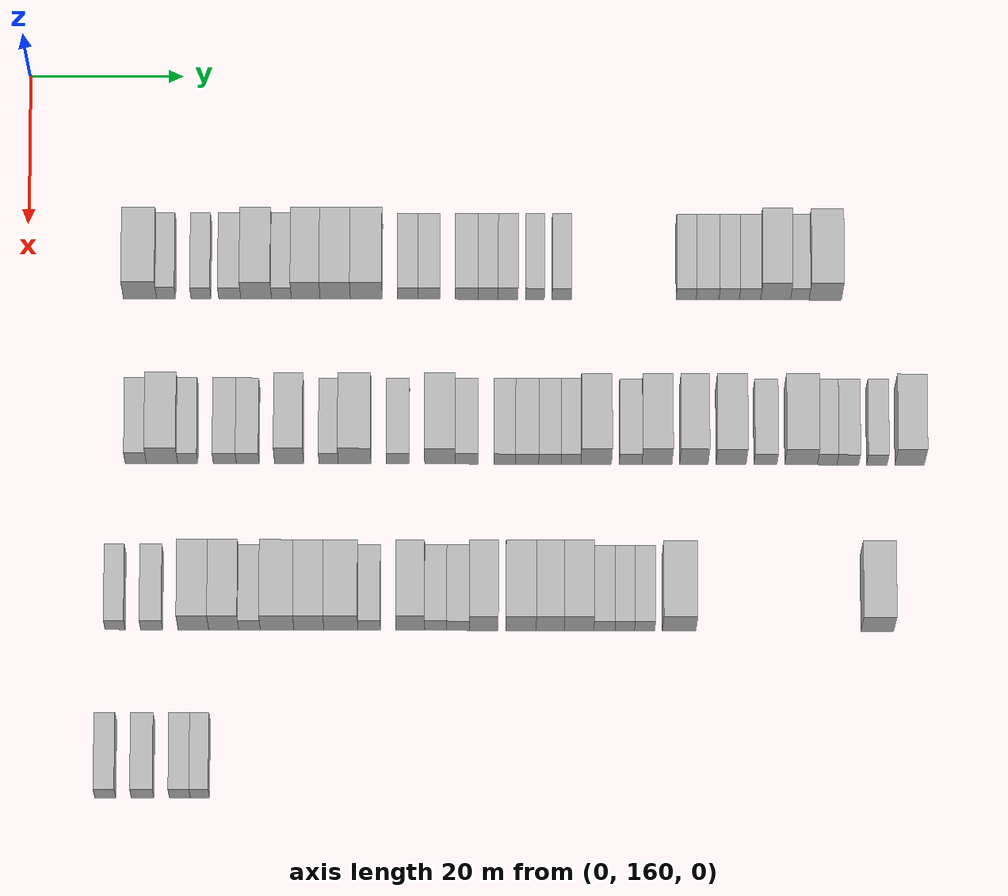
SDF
<sdf version="1.6">
 <world name="default">
  <model name="building_136">
   <static>1</static>
   <pose>25.0000 174.6385 0 0.000000 0.000000 0.000000</pose>
   <link name="link">
    <pose>0 0 4.50 0 0 0</pose>
    <collision name="collision"><geometry><box><size>10.0000 4.3280 9.0000</size></box></geometry></collision>
    <visual name="visual">
     <cast_shadows>0</cast_shadows>
     <geometry><box><size>10.0000 4.3280 9.0000</size></box></geometry>
     <material>
      <script>
       <uri>model://HANNAS_wall/materials/scripts</uri>
       <uri>model://HANNAS_wall/materials/textures</uri>
       <name>vrc/HANNAS_wall</name>
      </script>
     </material>
    </visual>
   </link>
  </model>
  <model name="building_137">
   <static>1</static>
   <pose>25.0000 178.0387 0 0.000000 0.000000 0.000000</pose>
   <link name="link">
    <pose>0 0 3.00 0 0 0</pose>
    <collision name="collision"><geometry><box><size>10.0000 2.4725 6.0000</size></box></geometry></collision>
    <visual name="visual">
     <cast_shadows>0</cast_shadows>
     <geometry><box><size>10.0000 2.4725 6.0000</size></box></geometry>
     <material>
      <script>
       <uri>model://HANNAS_wall/materials/scripts</uri>
       <uri>model://HANNAS_wall/materials/textures</uri>
       <name>vrc/HANNAS_wall</name>
      </script>
     </material>
    </visual>
   </link>
  </model>
  <model name="building_138">
   <static>1</static>
   <pose>25.0000 182.5756 0 0.000000 0.000000 0.000000</pose>
   <link name="link">
    <pose>0 0 3.00 0 0 0</pose>
    <collision name="collision"><geometry><box><size>10.0000 2.6013 6.0000</size></box></geometry></collision>
    <visual name="visual">
     <cast_shadows>0</cast_shadows>
     <geometry><box><size>10.0000 2.6013 6.0000</size></box></geometry>
     <material>
      <script>
       <uri>model://HANNAS_wall/materials/scripts</uri>
       <uri>model://HANNAS_wall/materials/textures</uri>
       <name>vrc/HANNAS_wall</name>
      </script>
     </material>
    </visual>
   </link>
  </model>
  <model name="building_139">
   <static>1</static>
   <pose>25.0000 186.3101 0 0.000000 0.000000 0.000000</pose>
   <link name="link">
    <pose>0 0 3.00 0 0 0</pose>
    <collision name="collision"><geometry><box><size>10.0000 2.8678 6.0000</size></box></geometry></collision>
    <visual name="visual">
     <cast_shadows>0</cast_shadows>
     <geometry><box><size>10.0000 2.8678 6.0000</size></box></geometry>
     <material>
      <script>
       <uri>model://HANNAS_wall/materials/scripts</uri>
       <uri>model://HANNAS_wall/materials/textures</uri>
       <name>vrc/HANNAS_wall</name>
      </script>
     </material>
    </visual>
   </link>
  </model>
  <model name="building_140">
   <static>1</static>
   <pose>25.0000 189.7427 0 0.000000 0.000000 0.000000</pose>
   <link name="link">
    <pose>0 0 4.50 0 0 0</pose>
    <collision name="collision"><geometry><box><size>10.0000 3.9974 9.0000</size></box></geometry></collision>
    <visual name="visual">
     <cast_shadows>0</cast_shadows>
     <geometry><box><size>10.0000 3.9974 9.0000</size></box></geometry>
     <material>
      <script>
       <uri>model://HANNAS_wall/materials/scripts</uri>
       <uri>model://HANNAS_wall/materials/textures</uri>
       <name>vrc/HANNAS_wall</name>
      </script>
     </material>
    </visual>
   </link>
  </model>
  <model name="building_141">
   <static>1</static>
   <pose>25.0000 193.0312 0 0.000000 0.000000 0.000000</pose>
   <link name="link">
    <pose>0 0 3.00 0 0 0</pose>
    <collision name="collision"><geometry><box><size>10.0000 2.5796 6.0000</size></box></geometry></collision>
    <visual name="visual">
     <cast_shadows>0</cast_shadows>
     <geometry><box><size>10.0000 2.5796 6.0000</size></box></geometry>
     <material>
      <script>
       <uri>model://HANNAS_wall/materials/scripts</uri>
       <uri>model://HANNAS_wall/materials/textures</uri>
       <name>vrc/HANNAS_wall</name>
      </script>
     </material>
    </visual>
   </link>
  </model>
  <model name="building_142">
   <static>1</static>
   <pose>25.0000 196.1943 0 0.000000 0.000000 0.000000</pose>
   <link name="link">
    <pose>0 0 4.50 0 0 0</pose>
    <collision name="collision"><geometry><box><size>10.0000 3.7467 9.0000</size></box></geometry></collision>
    <visual name="visual">
     <cast_shadows>0</cast_shadows>
     <geometry><box><size>10.0000 3.7467 9.0000</size></box></geometry>
     <material>
      <script>
       <uri>model://HANNAS_wall/materials/scripts</uri>
       <uri>model://HANNAS_wall/materials/textures</uri>
       <name>vrc/HANNAS_wall</name>
      </script>
     </material>
    </visual>
   </link>
  </model>
  <model name="building_143">
   <static>1</static>
   <pose>25.0000 200.0348 0 0.000000 0.000000 0.000000</pose>
   <link name="link">
    <pose>0 0 4.50 0 0 0</pose>
    <collision name="collision"><geometry><box><size>10.0000 3.9343 9.0000</size></box></geometry></collision>
    <visual name="visual">
     <cast_shadows>0</cast_shadows>
     <geometry><box><size>10.0000 3.9343 9.0000</size></box></geometry>
     <material>
      <script>
       <uri>model://HANNAS_wall/materials/scripts</uri>
       <uri>model://HANNAS_wall/materials/textures</uri>
       <name>vrc/HANNAS_wall</name>
      </script>
     </material>
    </visual>
   </link>
  </model>
  <model name="building_144">
   <static>1</static>
   <pose>25.0000 204.0792 0 0.000000 0.000000 0.000000</pose>
   <link name="link">
    <pose>0 0 4.50 0 0 0</pose>
    <collision name="collision"><geometry><box><size>10.0000 4.1543 9.0000</size></box></geometry></collision>
    <visual name="visual">
     <cast_shadows>0</cast_shadows>
     <geometry><box><size>10.0000 4.1543 9.0000</size></box></geometry>
     <material>
      <script>
       <uri>model://HANNAS_wall/materials/scripts</uri>
       <uri>model://HANNAS_wall/materials/textures</uri>
       <name>vrc/HANNAS_wall</name>
      </script>
     </material>
    </visual>
   </link>
  </model>
  <model name="building_145">
   <static>1</static>
   <pose>25.0000 209.4764 0 0.000000 0.000000 0.000000</pose>
   <link name="link">
    <pose>0 0 3.00 0 0 0</pose>
    <collision name="collision"><geometry><box><size>10.0000 2.6402 6.0000</size></box></geometry></collision>
    <visual name="visual">
     <cast_shadows>0</cast_shadows>
     <geometry><box><size>10.0000 2.6402 6.0000</size></box></geometry>
     <material>
      <script>
       <uri>model://HANNAS_wall/materials/scripts</uri>
       <uri>model://HANNAS_wall/materials/textures</uri>
       <name>vrc/HANNAS_wall</name>
      </script>
     </material>
    </visual>
   </link>
  </model>
  <model name="building_146">
   <static>1</static>
   <pose>25.0000 212.2350 0 0.000000 0.000000 0.000000</pose>
   <link name="link">
    <pose>0 0 3.00 0 0 0</pose>
    <collision name="collision"><geometry><box><size>10.0000 2.8770 6.0000</size></box></geometry></collision>
    <visual name="visual">
     <cast_shadows>0</cast_shadows>
     <geometry><box><size>10.0000 2.8770 6.0000</size></box></geometry>
     <material>
      <script>
       <uri>model://HANNAS_wall/materials/scripts</uri>
       <uri>model://HANNAS_wall/materials/textures</uri>
       <name>vrc/HANNAS_wall</name>
      </script>
     </material>
    </visual>
   </link>
  </model>
  <model name="building_147">
   <static>1</static>
   <pose>25.0000 217.1285 0 0.000000 0.000000 0.000000</pose>
   <link name="link">
    <pose>0 0 3.00 0 0 0</pose>
    <collision name="collision"><geometry><box><size>10.0000 2.9099 6.0000</size></box></geometry></collision>
    <visual name="visual">
     <cast_shadows>0</cast_shadows>
     <geometry><box><size>10.0000 2.9099 6.0000</size></box></geometry>
     <material>
      <script>
       <uri>model://HANNAS_wall/materials/scripts</uri>
       <uri>model://HANNAS_wall/materials/textures</uri>
       <name>vrc/HANNAS_wall</name>
      </script>
     </material>
    </visual>
   </link>
  </model>
  <model name="building_148">
   <static>1</static>
   <pose>25.0000 219.9063 0 0.000000 0.000000 0.000000</pose>
   <link name="link">
    <pose>0 0 3.00 0 0 0</pose>
    <collision name="collision"><geometry><box><size>10.0000 2.6457 6.0000</size></box></geometry></collision>
    <visual name="visual">
     <cast_shadows>0</cast_shadows>
     <geometry><box><size>10.0000 2.6457 6.0000</size></box></geometry>
     <material>
      <script>
       <uri>model://HANNAS_wall/materials/scripts</uri>
       <uri>model://HANNAS_wall/materials/textures</uri>
       <name>vrc/HANNAS_wall</name>
      </script>
     </material>
    </visual>
   </link>
  </model>
  <model name="building_149">
   <static>1</static>
   <pose>25.0000 222.5186 0 0.000000 0.000000 0.000000</pose>
   <link name="link">
    <pose>0 0 3.00 0 0 0</pose>
    <collision name="collision"><geometry><box><size>10.0000 2.5790 6.0000</size></box></geometry></collision>
    <visual name="visual">
     <cast_shadows>0</cast_shadows>
     <geometry><box><size>10.0000 2.5790 6.0000</size></box></geometry>
     <material>
      <script>
       <uri>model://HANNAS_wall/materials/scripts</uri>
       <uri>model://HANNAS_wall/materials/textures</uri>
       <name>vrc/HANNAS_wall</name>
      </script>
     </material>
    </visual>
   </link>
  </model>
  <model name="building_150">
   <static>1</static>
   <pose>25.0000 226.0220 0 0.000000 0.000000 0.000000</pose>
   <link name="link">
    <pose>0 0 3.00 0 0 0</pose>
    <collision name="collision"><geometry><box><size>10.0000 2.4277 6.0000</size></box></geometry></collision>
    <visual name="visual">
     <cast_shadows>0</cast_shadows>
     <geometry><box><size>10.0000 2.4277 6.0000</size></box></geometry>
     <material>
      <script>
       <uri>model://HANNAS_wall/materials/scripts</uri>
       <uri>model://HANNAS_wall/materials/textures</uri>
       <name>vrc/HANNAS_wall</name>
      </script>
     </material>
    </visual>
   </link>
  </model>
  <model name="building_151">
   <static>1</static>
   <pose>25.0000 229.4971 0 0.000000 0.000000 0.000000</pose>
   <link name="link">
    <pose>0 0 3.00 0 0 0</pose>
    <collision name="collision"><geometry><box><size>10.0000 2.5225 6.0000</size></box></geometry></collision>
    <visual name="visual">
     <cast_shadows>0</cast_shadows>
     <geometry><box><size>10.0000 2.5225 6.0000</size></box></geometry>
     <material>
      <script>
       <uri>model://HANNAS_wall/materials/scripts</uri>
       <uri>model://HANNAS_wall/materials/textures</uri>
       <name>vrc/HANNAS_wall</name>
      </script>
     </material>
    </visual>
   </link>
  </model>
  <model name="building_152">
   <static>1</static>
   <pose>25.0000 245.6763 0 0.000000 0.000000 0.000000</pose>
   <link name="link">
    <pose>0 0 3.00 0 0 0</pose>
    <collision name="collision"><geometry><box><size>10.0000 2.6119 6.0000</size></box></geometry></collision>
    <visual name="visual">
     <cast_shadows>0</cast_shadows>
     <geometry><box><size>10.0000 2.6119 6.0000</size></box></geometry>
     <material>
      <script>
       <uri>model://HANNAS_wall/materials/scripts</uri>
       <uri>model://HANNAS_wall/materials/textures</uri>
       <name>vrc/HANNAS_wall</name>
      </script>
     </material>
    </visual>
   </link>
  </model>
  <model name="building_153">
   <static>1</static>
   <pose>25.0000 248.4708 0 0.000000 0.000000 0.000000</pose>
   <link name="link">
    <pose>0 0 3.00 0 0 0</pose>
    <collision name="collision"><geometry><box><size>10.0000 2.9770 6.0000</size></box></geometry></collision>
    <visual name="visual">
     <cast_shadows>0</cast_shadows>
     <geometry><box><size>10.0000 2.9770 6.0000</size></box></geometry>
     <material>
      <script>
       <uri>model://HANNAS_wall/materials/scripts</uri>
       <uri>model://HANNAS_wall/materials/textures</uri>
       <name>vrc/HANNAS_wall</name>
      </script>
     </material>
    </visual>
   </link>
  </model>
  <model name="building_154">
   <static>1</static>
   <pose>25.0000 251.2786 0 0.000000 0.000000 0.000000</pose>
   <link name="link">
    <pose>0 0 3.00 0 0 0</pose>
    <collision name="collision"><geometry><box><size>10.0000 2.6387 6.0000</size></box></geometry></collision>
    <visual name="visual">
     <cast_shadows>0</cast_shadows>
     <geometry><box><size>10.0000 2.6387 6.0000</size></box></geometry>
     <material>
      <script>
       <uri>model://HANNAS_wall/materials/scripts</uri>
       <uri>model://HANNAS_wall/materials/textures</uri>
       <name>vrc/HANNAS_wall</name>
      </script>
     </material>
    </visual>
   </link>
  </model>
  <model name="building_155">
   <static>1</static>
   <pose>25.0000 253.9917 0 0.000000 0.000000 0.000000</pose>
   <link name="link">
    <pose>0 0 3.00 0 0 0</pose>
    <collision name="collision"><geometry><box><size>10.0000 2.7875 6.0000</size></box></geometry></collision>
    <visual name="visual">
     <cast_shadows>0</cast_shadows>
     <geometry><box><size>10.0000 2.7875 6.0000</size></box></geometry>
     <material>
      <script>
       <uri>model://HANNAS_wall/materials/scripts</uri>
       <uri>model://HANNAS_wall/materials/textures</uri>
       <name>vrc/HANNAS_wall</name>
      </script>
     </material>
    </visual>
   </link>
  </model>
  <model name="building_156">
   <static>1</static>
   <pose>25.0000 257.3257 0 0.000000 0.000000 0.000000</pose>
   <link name="link">
    <pose>0 0 4.50 0 0 0</pose>
    <collision name="collision"><geometry><box><size>10.0000 3.8804 9.0000</size></box></geometry></collision>
    <visual name="visual">
     <cast_shadows>0</cast_shadows>
     <geometry><box><size>10.0000 3.8804 9.0000</size></box></geometry>
     <material>
      <script>
       <uri>model://HANNAS_wall/materials/scripts</uri>
       <uri>model://HANNAS_wall/materials/textures</uri>
       <name>vrc/HANNAS_wall</name>
      </script>
     </material>
    </visual>
   </link>
  </model>
  <model name="building_157">
   <static>1</static>
   <pose>25.0000 260.4754 0 0.000000 0.000000 0.000000</pose>
   <link name="link">
    <pose>0 0 3.00 0 0 0</pose>
    <collision name="collision"><geometry><box><size>10.0000 2.4189 6.0000</size></box></geometry></collision>
    <visual name="visual">
     <cast_shadows>0</cast_shadows>
     <geometry><box><size>10.0000 2.4189 6.0000</size></box></geometry>
     <material>
      <script>
       <uri>model://HANNAS_wall/materials/scripts</uri>
       <uri>model://HANNAS_wall/materials/textures</uri>
       <name>vrc/HANNAS_wall</name>
      </script>
     </material>
    </visual>
   </link>
  </model>
  <model name="building_158">
   <static>1</static>
   <pose>25.0000 263.7887 0 0.000000 0.000000 0.000000</pose>
   <link name="link">
    <pose>0 0 4.50 0 0 0</pose>
    <collision name="collision"><geometry><box><size>10.0000 4.2078 9.0000</size></box></geometry></collision>
    <visual name="visual">
     <cast_shadows>0</cast_shadows>
     <geometry><box><size>10.0000 4.2078 9.0000</size></box></geometry>
     <material>
      <script>
       <uri>model://HANNAS_wall/materials/scripts</uri>
       <uri>model://HANNAS_wall/materials/textures</uri>
       <name>vrc/HANNAS_wall</name>
      </script>
     </material>
    </visual>
   </link>
  </model>
  <model name="building_311">
   <static>1</static>
   <pose>47.0000 174.3476 0 0.000000 0.000000 0.000000</pose>
   <link name="link">
    <pose>0 0 3.00 0 0 0</pose>
    <collision name="collision"><geometry><box><size>10.0000 2.7303 6.0000</size></box></geometry></collision>
    <visual name="visual">
     <cast_shadows>0</cast_shadows>
     <geometry><box><size>10.0000 2.7303 6.0000</size></box></geometry>
     <material>
      <script>
       <uri>model://HANNAS_wall/materials/scripts</uri>
       <uri>model://HANNAS_wall/materials/textures</uri>
       <name>vrc/HANNAS_wall</name>
      </script>
     </material>
    </visual>
   </link>
  </model>
  <model name="building_312">
   <static>1</static>
   <pose>47.0000 177.7448 0 0.000000 0.000000 0.000000</pose>
   <link name="link">
    <pose>0 0 4.50 0 0 0</pose>
    <collision name="collision"><geometry><box><size>10.0000 4.0641 9.0000</size></box></geometry></collision>
    <visual name="visual">
     <cast_shadows>0</cast_shadows>
     <geometry><box><size>10.0000 4.0641 9.0000</size></box></geometry>
     <material>
      <script>
       <uri>model://HANNAS_wall/materials/scripts</uri>
       <uri>model://HANNAS_wall/materials/textures</uri>
       <name>vrc/HANNAS_wall</name>
      </script>
     </material>
    </visual>
   </link>
  </model>
  <model name="building_313">
   <static>1</static>
   <pose>47.0000 181.0841 0 0.000000 0.000000 0.000000</pose>
   <link name="link">
    <pose>0 0 3.00 0 0 0</pose>
    <collision name="collision"><geometry><box><size>10.0000 2.6144 6.0000</size></box></geometry></collision>
    <visual name="visual">
     <cast_shadows>0</cast_shadows>
     <geometry><box><size>10.0000 2.6144 6.0000</size></box></geometry>
     <material>
      <script>
       <uri>model://HANNAS_wall/materials/scripts</uri>
       <uri>model://HANNAS_wall/materials/textures</uri>
       <name>vrc/HANNAS_wall</name>
      </script>
     </material>
    </visual>
   </link>
  </model>
  <model name="building_314">
   <static>1</static>
   <pose>47.0000 185.8791 0 0.000000 0.000000 0.000000</pose>
   <link name="link">
    <pose>0 0 3.00 0 0 0</pose>
    <collision name="collision"><geometry><box><size>10.0000 2.9756 6.0000</size></box></geometry></collision>
    <visual name="visual">
     <cast_shadows>0</cast_shadows>
     <geometry><box><size>10.0000 2.9756 6.0000</size></box></geometry>
     <material>
      <script>
       <uri>model://HANNAS_wall/materials/scripts</uri>
       <uri>model://HANNAS_wall/materials/textures</uri>
       <name>vrc/HANNAS_wall</name>
      </script>
     </material>
    </visual>
   </link>
  </model>
  <model name="building_315">
   <static>1</static>
   <pose>47.0000 188.8512 0 0.000000 0.000000 0.000000</pose>
   <link name="link">
    <pose>0 0 3.00 0 0 0</pose>
    <collision name="collision"><geometry><box><size>10.0000 2.9687 6.0000</size></box></geometry></collision>
    <visual name="visual">
     <cast_shadows>0</cast_shadows>
     <geometry><box><size>10.0000 2.9687 6.0000</size></box></geometry>
     <material>
      <script>
       <uri>model://HANNAS_wall/materials/scripts</uri>
       <uri>model://HANNAS_wall/materials/textures</uri>
       <name>vrc/HANNAS_wall</name>
      </script>
     </material>
    </visual>
   </link>
  </model>
  <model name="building_316">
   <static>1</static>
   <pose>47.0000 194.2058 0 0.000000 0.000000 0.000000</pose>
   <link name="link">
    <pose>0 0 4.50 0 0 0</pose>
    <collision name="collision"><geometry><box><size>10.0000 3.7405 9.0000</size></box></geometry></collision>
    <visual name="visual">
     <cast_shadows>0</cast_shadows>
     <geometry><box><size>10.0000 3.7405 9.0000</size></box></geometry>
     <material>
      <script>
       <uri>model://HANNAS_wall/materials/scripts</uri>
       <uri>model://HANNAS_wall/materials/textures</uri>
       <name>vrc/HANNAS_wall</name>
      </script>
     </material>
    </visual>
   </link>
  </model>
  <model name="building_317">
   <static>1</static>
   <pose>47.0000 199.3236 0 0.000000 0.000000 0.000000</pose>
   <link name="link">
    <pose>0 0 3.00 0 0 0</pose>
    <collision name="collision"><geometry><box><size>10.0000 2.4952 6.0000</size></box></geometry></collision>
    <visual name="visual">
     <cast_shadows>0</cast_shadows>
     <geometry><box><size>10.0000 2.4952 6.0000</size></box></geometry>
     <material>
      <script>
       <uri>model://HANNAS_wall/materials/scripts</uri>
       <uri>model://HANNAS_wall/materials/textures</uri>
       <name>vrc/HANNAS_wall</name>
      </script>
     </material>
    </visual>
   </link>
  </model>
  <model name="building_318">
   <static>1</static>
   <pose>47.0000 202.6928 0 0.000000 0.000000 0.000000</pose>
   <link name="link">
    <pose>0 0 4.50 0 0 0</pose>
    <collision name="collision"><geometry><box><size>10.0000 4.2431 9.0000</size></box></geometry></collision>
    <visual name="visual">
     <cast_shadows>0</cast_shadows>
     <geometry><box><size>10.0000 4.2431 9.0000</size></box></geometry>
     <material>
      <script>
       <uri>model://HANNAS_wall/materials/scripts</uri>
       <uri>model://HANNAS_wall/materials/textures</uri>
       <name>vrc/HANNAS_wall</name>
      </script>
     </material>
    </visual>
   </link>
  </model>
  <model name="building_319">
   <static>1</static>
   <pose>47.0000 208.2882 0 0.000000 0.000000 0.000000</pose>
   <link name="link">
    <pose>0 0 3.00 0 0 0</pose>
    <collision name="collision"><geometry><box><size>10.0000 2.9476 6.0000</size></box></geometry></collision>
    <visual name="visual">
     <cast_shadows>0</cast_shadows>
     <geometry><box><size>10.0000 2.9476 6.0000</size></box></geometry>
     <material>
      <script>
       <uri>model://HANNAS_wall/materials/scripts</uri>
       <uri>model://HANNAS_wall/materials/textures</uri>
       <name>vrc/HANNAS_wall</name>
      </script>
     </material>
    </visual>
   </link>
  </model>
  <model name="building_320">
   <static>1</static>
   <pose>47.0000 213.7345 0 0.000000 0.000000 0.000000</pose>
   <link name="link">
    <pose>0 0 4.50 0 0 0</pose>
    <collision name="collision"><geometry><box><size>10.0000 3.9449 9.0000</size></box></geometry></collision>
    <visual name="visual">
     <cast_shadows>0</cast_shadows>
     <geometry><box><size>10.0000 3.9449 9.0000</size></box></geometry>
     <material>
      <script>
       <uri>model://HANNAS_wall/materials/scripts</uri>
       <uri>model://HANNAS_wall/materials/textures</uri>
       <name>vrc/HANNAS_wall</name>
      </script>
     </material>
    </visual>
   </link>
  </model>
  <model name="building_321">
   <static>1</static>
   <pose>47.0000 217.1967 0 0.000000 0.000000 0.000000</pose>
   <link name="link">
    <pose>0 0 3.00 0 0 0</pose>
    <collision name="collision"><geometry><box><size>10.0000 2.9796 6.0000</size></box></geometry></collision>
    <visual name="visual">
     <cast_shadows>0</cast_shadows>
     <geometry><box><size>10.0000 2.9796 6.0000</size></box></geometry>
     <material>
      <script>
       <uri>model://HANNAS_wall/materials/scripts</uri>
       <uri>model://HANNAS_wall/materials/textures</uri>
       <name>vrc/HANNAS_wall</name>
      </script>
     </material>
    </visual>
   </link>
  </model>
  <model name="building_322">
   <static>1</static>
   <pose>47.0000 222.1008 0 0.000000 0.000000 0.000000</pose>
   <link name="link">
    <pose>0 0 3.00 0 0 0</pose>
    <collision name="collision"><geometry><box><size>10.0000 2.8285 6.0000</size></box></geometry></collision>
    <visual name="visual">
     <cast_shadows>0</cast_shadows>
     <geometry><box><size>10.0000 2.8285 6.0000</size></box></geometry>
     <material>
      <script>
       <uri>model://HANNAS_wall/materials/scripts</uri>
       <uri>model://HANNAS_wall/materials/textures</uri>
       <name>vrc/HANNAS_wall</name>
      </script>
     </material>
    </visual>
   </link>
  </model>
  <model name="building_323">
   <static>1</static>
   <pose>47.0000 225.0118 0 0.000000 0.000000 0.000000</pose>
   <link name="link">
    <pose>0 0 3.00 0 0 0</pose>
    <collision name="collision"><geometry><box><size>10.0000 2.9934 6.0000</size></box></geometry></collision>
    <visual name="visual">
     <cast_shadows>0</cast_shadows>
     <geometry><box><size>10.0000 2.9934 6.0000</size></box></geometry>
     <material>
      <script>
       <uri>model://HANNAS_wall/materials/scripts</uri>
       <uri>model://HANNAS_wall/materials/textures</uri>
       <name>vrc/HANNAS_wall</name>
      </script>
     </material>
    </visual>
   </link>
  </model>
  <model name="building_324">
   <static>1</static>
   <pose>47.0000 227.9754 0 0.000000 0.000000 0.000000</pose>
   <link name="link">
    <pose>0 0 3.00 0 0 0</pose>
    <collision name="collision"><geometry><box><size>10.0000 2.9338 6.0000</size></box></geometry></collision>
    <visual name="visual">
     <cast_shadows>0</cast_shadows>
     <geometry><box><size>10.0000 2.9338 6.0000</size></box></geometry>
     <material>
      <script>
       <uri>model://HANNAS_wall/materials/scripts</uri>
       <uri>model://HANNAS_wall/materials/textures</uri>
       <name>vrc/HANNAS_wall</name>
      </script>
     </material>
    </visual>
   </link>
  </model>
  <model name="building_325">
   <static>1</static>
   <pose>47.0000 230.7062 0 0.000000 0.000000 0.000000</pose>
   <link name="link">
    <pose>0 0 3.00 0 0 0</pose>
    <collision name="collision"><geometry><box><size>10.0000 2.5279 6.0000</size></box></geometry></collision>
    <visual name="visual">
     <cast_shadows>0</cast_shadows>
     <geometry><box><size>10.0000 2.5279 6.0000</size></box></geometry>
     <material>
      <script>
       <uri>model://HANNAS_wall/materials/scripts</uri>
       <uri>model://HANNAS_wall/materials/textures</uri>
       <name>vrc/HANNAS_wall</name>
      </script>
     </material>
    </visual>
   </link>
  </model>
  <model name="building_326">
   <static>1</static>
   <pose>47.0000 233.9519 0 0.000000 0.000000 0.000000</pose>
   <link name="link">
    <pose>0 0 4.50 0 0 0</pose>
    <collision name="collision"><geometry><box><size>10.0000 3.9634 9.0000</size></box></geometry></collision>
    <visual name="visual">
     <cast_shadows>0</cast_shadows>
     <geometry><box><size>10.0000 3.9634 9.0000</size></box></geometry>
     <material>
      <script>
       <uri>model://HANNAS_wall/materials/scripts</uri>
       <uri>model://HANNAS_wall/materials/textures</uri>
       <name>vrc/HANNAS_wall</name>
      </script>
     </material>
    </visual>
   </link>
  </model>
  <model name="building_327">
   <static>1</static>
   <pose>47.0000 238.4036 0 0.000000 0.000000 0.000000</pose>
   <link name="link">
    <pose>0 0 3.00 0 0 0</pose>
    <collision name="collision"><geometry><box><size>10.0000 2.9401 6.0000</size></box></geometry></collision>
    <visual name="visual">
     <cast_shadows>0</cast_shadows>
     <geometry><box><size>10.0000 2.9401 6.0000</size></box></geometry>
     <material>
      <script>
       <uri>model://HANNAS_wall/materials/scripts</uri>
       <uri>model://HANNAS_wall/materials/textures</uri>
       <name>vrc/HANNAS_wall</name>
      </script>
     </material>
    </visual>
   </link>
  </model>
  <model name="building_328">
   <static>1</static>
   <pose>47.0000 241.8210 0 0.000000 0.000000 0.000000</pose>
   <link name="link">
    <pose>0 0 4.50 0 0 0</pose>
    <collision name="collision"><geometry><box><size>10.0000 3.8947 9.0000</size></box></geometry></collision>
    <visual name="visual">
     <cast_shadows>0</cast_shadows>
     <geometry><box><size>10.0000 3.8947 9.0000</size></box></geometry>
     <material>
      <script>
       <uri>model://HANNAS_wall/materials/scripts</uri>
       <uri>model://HANNAS_wall/materials/textures</uri>
       <name>vrc/HANNAS_wall</name>
      </script>
     </material>
    </visual>
   </link>
  </model>
  <model name="building_329">
   <static>1</static>
   <pose>47.0000 246.6109 0 0.000000 0.000000 0.000000</pose>
   <link name="link">
    <pose>0 0 4.50 0 0 0</pose>
    <collision name="collision"><geometry><box><size>10.0000 3.6850 9.0000</size></box></geometry></collision>
    <visual name="visual">
     <cast_shadows>0</cast_shadows>
     <geometry><box><size>10.0000 3.6850 9.0000</size></box></geometry>
     <material>
      <script>
       <uri>model://HANNAS_wall/materials/scripts</uri>
       <uri>model://HANNAS_wall/materials/textures</uri>
       <name>vrc/HANNAS_wall</name>
      </script>
     </material>
    </visual>
   </link>
  </model>
  <model name="building_330">
   <static>1</static>
   <pose>47.0000 251.4095 0 0.000000 0.000000 0.000000</pose>
   <link name="link">
    <pose>0 0 4.50 0 0 0</pose>
    <collision name="collision"><geometry><box><size>10.0000 3.9122 9.0000</size></box></geometry></collision>
    <visual name="visual">
     <cast_shadows>0</cast_shadows>
     <geometry><box><size>10.0000 3.9122 9.0000</size></box></geometry>
     <material>
      <script>
       <uri>model://HANNAS_wall/materials/scripts</uri>
       <uri>model://HANNAS_wall/materials/textures</uri>
       <name>vrc/HANNAS_wall</name>
      </script>
     </material>
    </visual>
   </link>
  </model>
  <model name="building_331">
   <static>1</static>
   <pose>47.0000 255.8640 0 0.000000 0.000000 0.000000</pose>
   <link name="link">
    <pose>0 0 3.00 0 0 0</pose>
    <collision name="collision"><geometry><box><size>10.0000 2.9968 6.0000</size></box></geometry></collision>
    <visual name="visual">
     <cast_shadows>0</cast_shadows>
     <geometry><box><size>10.0000 2.9968 6.0000</size></box></geometry>
     <material>
      <script>
       <uri>model://HANNAS_wall/materials/scripts</uri>
       <uri>model://HANNAS_wall/materials/textures</uri>
       <name>vrc/HANNAS_wall</name>
      </script>
     </material>
    </visual>
   </link>
  </model>
  <model name="building_332">
   <static>1</static>
   <pose>47.0000 260.4750 0 0.000000 0.000000 0.000000</pose>
   <link name="link">
    <pose>0 0 4.50 0 0 0</pose>
    <collision name="collision"><geometry><box><size>10.0000 4.2254 9.0000</size></box></geometry></collision>
    <visual name="visual">
     <cast_shadows>0</cast_shadows>
     <geometry><box><size>10.0000 4.2254 9.0000</size></box></geometry>
     <material>
      <script>
       <uri>model://HANNAS_wall/materials/scripts</uri>
       <uri>model://HANNAS_wall/materials/textures</uri>
       <name>vrc/HANNAS_wall</name>
      </script>
     </material>
    </visual>
   </link>
  </model>
  <model name="building_333">
   <static>1</static>
   <pose>47.0000 263.8607 0 0.000000 0.000000 0.000000</pose>
   <link name="link">
    <pose>0 0 3.00 0 0 0</pose>
    <collision name="collision"><geometry><box><size>10.0000 2.5459 6.0000</size></box></geometry></collision>
    <visual name="visual">
     <cast_shadows>0</cast_shadows>
     <geometry><box><size>10.0000 2.5459 6.0000</size></box></geometry>
     <material>
      <script>
       <uri>model://HANNAS_wall/materials/scripts</uri>
       <uri>model://HANNAS_wall/materials/textures</uri>
       <name>vrc/HANNAS_wall</name>
      </script>
     </material>
    </visual>
   </link>
  </model>
  <model name="building_334">
   <static>1</static>
   <pose>47.0000 266.5431 0 0.000000 0.000000 0.000000</pose>
   <link name="link">
    <pose>0 0 3.00 0 0 0</pose>
    <collision name="collision"><geometry><box><size>10.0000 2.8189 6.0000</size></box></geometry></collision>
    <visual name="visual">
     <cast_shadows>0</cast_shadows>
     <geometry><box><size>10.0000 2.8189 6.0000</size></box></geometry>
     <material>
      <script>
       <uri>model://HANNAS_wall/materials/scripts</uri>
       <uri>model://HANNAS_wall/materials/textures</uri>
       <name>vrc/HANNAS_wall</name>
      </script>
     </material>
    </visual>
   </link>
  </model>
  <model name="building_335">
   <static>1</static>
   <pose>47.0000 270.2932 0 0.000000 0.000000 0.000000</pose>
   <link name="link">
    <pose>0 0 3.00 0 0 0</pose>
    <collision name="collision"><geometry><box><size>10.0000 2.6815 6.0000</size></box></geometry></collision>
    <visual name="visual">
     <cast_shadows>0</cast_shadows>
     <geometry><box><size>10.0000 2.6815 6.0000</size></box></geometry>
     <material>
      <script>
       <uri>model://HANNAS_wall/materials/scripts</uri>
       <uri>model://HANNAS_wall/materials/textures</uri>
       <name>vrc/HANNAS_wall</name>
      </script>
     </material>
    </visual>
   </link>
  </model>
  <model name="building_336">
   <static>1</static>
   <pose>47.0000 274.5380 0 0.000000 0.000000 0.000000</pose>
   <link name="link">
    <pose>0 0 4.50 0 0 0</pose>
    <collision name="collision"><geometry><box><size>10.0000 3.8080 9.0000</size></box></geometry></collision>
    <visual name="visual">
     <cast_shadows>0</cast_shadows>
     <geometry><box><size>10.0000 3.8080 9.0000</size></box></geometry>
     <material>
      <script>
       <uri>model://HANNAS_wall/materials/scripts</uri>
       <uri>model://HANNAS_wall/materials/textures</uri>
       <name>vrc/HANNAS_wall</name>
      </script>
     </material>
    </visual>
   </link>
  </model>
  <model name="building_497">
   <static>1</static>
   <pose>69.0000 171.9538 0 0.000000 0.000000 0.000000</pose>
   <link name="link">
    <pose>0 0 3.00 0 0 0</pose>
    <collision name="collision"><geometry><box><size>10.0000 2.5838 6.0000</size></box></geometry></collision>
    <visual name="visual">
     <cast_shadows>0</cast_shadows>
     <geometry><box><size>10.0000 2.5838 6.0000</size></box></geometry>
     <material>
      <script>
       <uri>model://HANNAS_wall/materials/scripts</uri>
       <uri>model://HANNAS_wall/materials/textures</uri>
       <name>vrc/HANNAS_wall</name>
      </script>
     </material>
    </visual>
   </link>
  </model>
  <model name="building_498">
   <static>1</static>
   <pose>69.0000 176.6601 0 0.000000 0.000000 0.000000</pose>
   <link name="link">
    <pose>0 0 3.00 0 0 0</pose>
    <collision name="collision"><geometry><box><size>10.0000 2.8286 6.0000</size></box></geometry></collision>
    <visual name="visual">
     <cast_shadows>0</cast_shadows>
     <geometry><box><size>10.0000 2.8286 6.0000</size></box></geometry>
     <material>
      <script>
       <uri>model://HANNAS_wall/materials/scripts</uri>
       <uri>model://HANNAS_wall/materials/textures</uri>
       <name>vrc/HANNAS_wall</name>
      </script>
     </material>
    </visual>
   </link>
  </model>
  <model name="building_499">
   <static>1</static>
   <pose>69.0000 182.0387 0 0.000000 0.000000 0.000000</pose>
   <link name="link">
    <pose>0 0 4.50 0 0 0</pose>
    <collision name="collision"><geometry><box><size>10.0000 3.9286 9.0000</size></box></geometry></collision>
    <visual name="visual">
     <cast_shadows>0</cast_shadows>
     <geometry><box><size>10.0000 3.9286 9.0000</size></box></geometry>
     <material>
      <script>
       <uri>model://HANNAS_wall/materials/scripts</uri>
       <uri>model://HANNAS_wall/materials/textures</uri>
       <name>vrc/HANNAS_wall</name>
      </script>
     </material>
    </visual>
   </link>
  </model>
  <model name="building_500">
   <static>1</static>
   <pose>69.0000 185.9362 0 0.000000 0.000000 0.000000</pose>
   <link name="link">
    <pose>0 0 4.50 0 0 0</pose>
    <collision name="collision"><geometry><box><size>10.0000 3.8665 9.0000</size></box></geometry></collision>
    <visual name="visual">
     <cast_shadows>0</cast_shadows>
     <geometry><box><size>10.0000 3.8665 9.0000</size></box></geometry>
     <material>
      <script>
       <uri>model://HANNAS_wall/materials/scripts</uri>
       <uri>model://HANNAS_wall/materials/textures</uri>
       <name>vrc/HANNAS_wall</name>
      </script>
     </material>
    </visual>
   </link>
  </model>
  <model name="building_501">
   <static>1</static>
   <pose>69.0000 189.2617 0 0.000000 0.000000 0.000000</pose>
   <link name="link">
    <pose>0 0 3.00 0 0 0</pose>
    <collision name="collision"><geometry><box><size>10.0000 2.7844 6.0000</size></box></geometry></collision>
    <visual name="visual">
     <cast_shadows>0</cast_shadows>
     <geometry><box><size>10.0000 2.7844 6.0000</size></box></geometry>
     <material>
      <script>
       <uri>model://HANNAS_wall/materials/scripts</uri>
       <uri>model://HANNAS_wall/materials/textures</uri>
       <name>vrc/HANNAS_wall</name>
      </script>
     </material>
    </visual>
   </link>
  </model>
  <model name="building_502">
   <static>1</static>
   <pose>69.0000 192.8253 0 0.000000 0.000000 0.000000</pose>
   <link name="link">
    <pose>0 0 4.50 0 0 0</pose>
    <collision name="collision"><geometry><box><size>10.0000 4.3427 9.0000</size></box></geometry></collision>
    <visual name="visual">
     <cast_shadows>0</cast_shadows>
     <geometry><box><size>10.0000 4.3427 9.0000</size></box></geometry>
     <material>
      <script>
       <uri>model://HANNAS_wall/materials/scripts</uri>
       <uri>model://HANNAS_wall/materials/textures</uri>
       <name>vrc/HANNAS_wall</name>
      </script>
     </material>
    </visual>
   </link>
  </model>
  <model name="building_503">
   <static>1</static>
   <pose>69.0000 196.9278 0 0.000000 0.000000 0.000000</pose>
   <link name="link">
    <pose>0 0 4.50 0 0 0</pose>
    <collision name="collision"><geometry><box><size>10.0000 3.8623 9.0000</size></box></geometry></collision>
    <visual name="visual">
     <cast_shadows>0</cast_shadows>
     <geometry><box><size>10.0000 3.8623 9.0000</size></box></geometry>
     <material>
      <script>
       <uri>model://HANNAS_wall/materials/scripts</uri>
       <uri>model://HANNAS_wall/materials/textures</uri>
       <name>vrc/HANNAS_wall</name>
      </script>
     </material>
    </visual>
   </link>
  </model>
  <model name="building_504">
   <static>1</static>
   <pose>69.0000 201.0512 0 0.000000 0.000000 0.000000</pose>
   <link name="link">
    <pose>0 0 4.50 0 0 0</pose>
    <collision name="collision"><geometry><box><size>10.0000 4.3846 9.0000</size></box></geometry></collision>
    <visual name="visual">
     <cast_shadows>0</cast_shadows>
     <geometry><box><size>10.0000 4.3846 9.0000</size></box></geometry>
     <material>
      <script>
       <uri>model://HANNAS_wall/materials/scripts</uri>
       <uri>model://HANNAS_wall/materials/textures</uri>
       <name>vrc/HANNAS_wall</name>
      </script>
     </material>
    </visual>
   </link>
  </model>
  <model name="building_505">
   <static>1</static>
   <pose>69.0000 204.6947 0 0.000000 0.000000 0.000000</pose>
   <link name="link">
    <pose>0 0 3.00 0 0 0</pose>
    <collision name="collision"><geometry><box><size>10.0000 2.9024 6.0000</size></box></geometry></collision>
    <visual name="visual">
     <cast_shadows>0</cast_shadows>
     <geometry><box><size>10.0000 2.9024 6.0000</size></box></geometry>
     <material>
      <script>
       <uri>model://HANNAS_wall/materials/scripts</uri>
       <uri>model://HANNAS_wall/materials/textures</uri>
       <name>vrc/HANNAS_wall</name>
      </script>
     </material>
    </visual>
   </link>
  </model>
  <model name="building_506">
   <static>1</static>
   <pose>69.0000 209.9944 0 0.000000 0.000000 0.000000</pose>
   <link name="link">
    <pose>0 0 4.50 0 0 0</pose>
    <collision name="collision"><geometry><box><size>10.0000 3.6969 9.0000</size></box></geometry></collision>
    <visual name="visual">
     <cast_shadows>0</cast_shadows>
     <geometry><box><size>10.0000 3.6969 9.0000</size></box></geometry>
     <material>
      <script>
       <uri>model://HANNAS_wall/materials/scripts</uri>
       <uri>model://HANNAS_wall/materials/textures</uri>
       <name>vrc/HANNAS_wall</name>
      </script>
     </material>
    </visual>
   </link>
  </model>
  <model name="building_507">
   <static>1</static>
   <pose>69.0000 213.2644 0 0.000000 0.000000 0.000000</pose>
   <link name="link">
    <pose>0 0 3.00 0 0 0</pose>
    <collision name="collision"><geometry><box><size>10.0000 2.8432 6.0000</size></box></geometry></collision>
    <visual name="visual">
     <cast_shadows>0</cast_shadows>
     <geometry><box><size>10.0000 2.8432 6.0000</size></box></geometry>
     <material>
      <script>
       <uri>model://HANNAS_wall/materials/scripts</uri>
       <uri>model://HANNAS_wall/materials/textures</uri>
       <name>vrc/HANNAS_wall</name>
      </script>
     </material>
    </visual>
   </link>
  </model>
  <model name="building_508">
   <static>1</static>
   <pose>69.0000 216.1412 0 0.000000 0.000000 0.000000</pose>
   <link name="link">
    <pose>0 0 3.00 0 0 0</pose>
    <collision name="collision"><geometry><box><size>10.0000 2.9104 6.0000</size></box></geometry></collision>
    <visual name="visual">
     <cast_shadows>0</cast_shadows>
     <geometry><box><size>10.0000 2.9104 6.0000</size></box></geometry>
     <material>
      <script>
       <uri>model://HANNAS_wall/materials/scripts</uri>
       <uri>model://HANNAS_wall/materials/textures</uri>
       <name>vrc/HANNAS_wall</name>
      </script>
     </material>
    </visual>
   </link>
  </model>
  <model name="building_509">
   <static>1</static>
   <pose>69.0000 219.4519 0 0.000000 0.000000 0.000000</pose>
   <link name="link">
    <pose>0 0 4.50 0 0 0</pose>
    <collision name="collision"><geometry><box><size>10.0000 3.7111 9.0000</size></box></geometry></collision>
    <visual name="visual">
     <cast_shadows>0</cast_shadows>
     <geometry><box><size>10.0000 3.7111 9.0000</size></box></geometry>
     <material>
      <script>
       <uri>model://HANNAS_wall/materials/scripts</uri>
       <uri>model://HANNAS_wall/materials/textures</uri>
       <name>vrc/HANNAS_wall</name>
      </script>
     </material>
    </visual>
   </link>
  </model>
  <model name="building_510">
   <static>1</static>
   <pose>69.0000 224.2478 0 0.000000 0.000000 0.000000</pose>
   <link name="link">
    <pose>0 0 4.50 0 0 0</pose>
    <collision name="collision"><geometry><box><size>10.0000 3.8807 9.0000</size></box></geometry></collision>
    <visual name="visual">
     <cast_shadows>0</cast_shadows>
     <geometry><box><size>10.0000 3.8807 9.0000</size></box></geometry>
     <material>
      <script>
       <uri>model://HANNAS_wall/materials/scripts</uri>
       <uri>model://HANNAS_wall/materials/textures</uri>
       <name>vrc/HANNAS_wall</name>
      </script>
     </material>
    </visual>
   </link>
  </model>
  <model name="building_511">
   <static>1</static>
   <pose>69.0000 227.9997 0 0.000000 0.000000 0.000000</pose>
   <link name="link">
    <pose>0 0 4.50 0 0 0</pose>
    <collision name="collision"><geometry><box><size>10.0000 3.6231 9.0000</size></box></geometry></collision>
    <visual name="visual">
     <cast_shadows>0</cast_shadows>
     <geometry><box><size>10.0000 3.6231 9.0000</size></box></geometry>
     <material>
      <script>
       <uri>model://HANNAS_wall/materials/scripts</uri>
       <uri>model://HANNAS_wall/materials/textures</uri>
       <name>vrc/HANNAS_wall</name>
      </script>
     </material>
    </visual>
   </link>
  </model>
  <model name="building_512">
   <static>1</static>
   <pose>69.0000 231.7157 0 0.000000 0.000000 0.000000</pose>
   <link name="link">
    <pose>0 0 4.50 0 0 0</pose>
    <collision name="collision"><geometry><box><size>10.0000 3.8089 9.0000</size></box></geometry></collision>
    <visual name="visual">
     <cast_shadows>0</cast_shadows>
     <geometry><box><size>10.0000 3.8089 9.0000</size></box></geometry>
     <material>
      <script>
       <uri>model://HANNAS_wall/materials/scripts</uri>
       <uri>model://HANNAS_wall/materials/textures</uri>
       <name>vrc/HANNAS_wall</name>
      </script>
     </material>
    </visual>
   </link>
  </model>
  <model name="building_513">
   <static>1</static>
   <pose>69.0000 234.9820 0 0.000000 0.000000 0.000000</pose>
   <link name="link">
    <pose>0 0 3.00 0 0 0</pose>
    <collision name="collision"><geometry><box><size>10.0000 2.7238 6.0000</size></box></geometry></collision>
    <visual name="visual">
     <cast_shadows>0</cast_shadows>
     <geometry><box><size>10.0000 2.7238 6.0000</size></box></geometry>
     <material>
      <script>
       <uri>model://HANNAS_wall/materials/scripts</uri>
       <uri>model://HANNAS_wall/materials/textures</uri>
       <name>vrc/HANNAS_wall</name>
      </script>
     </material>
    </visual>
   </link>
  </model>
  <model name="building_514">
   <static>1</static>
   <pose>69.0000 237.6041 0 0.000000 0.000000 0.000000</pose>
   <link name="link">
    <pose>0 0 3.00 0 0 0</pose>
    <collision name="collision"><geometry><box><size>10.0000 2.5202 6.0000</size></box></geometry></collision>
    <visual name="visual">
     <cast_shadows>0</cast_shadows>
     <geometry><box><size>10.0000 2.5202 6.0000</size></box></geometry>
     <material>
      <script>
       <uri>model://HANNAS_wall/materials/scripts</uri>
       <uri>model://HANNAS_wall/materials/textures</uri>
       <name>vrc/HANNAS_wall</name>
      </script>
     </material>
    </visual>
   </link>
  </model>
  <model name="building_515">
   <static>1</static>
   <pose>69.0000 240.1697 0 0.000000 0.000000 0.000000</pose>
   <link name="link">
    <pose>0 0 3.00 0 0 0</pose>
    <collision name="collision"><geometry><box><size>10.0000 2.6110 6.0000</size></box></geometry></collision>
    <visual name="visual">
     <cast_shadows>0</cast_shadows>
     <geometry><box><size>10.0000 2.6110 6.0000</size></box></geometry>
     <material>
      <script>
       <uri>model://HANNAS_wall/materials/scripts</uri>
       <uri>model://HANNAS_wall/materials/textures</uri>
       <name>vrc/HANNAS_wall</name>
      </script>
     </material>
    </visual>
   </link>
  </model>
  <model name="building_516">
   <static>1</static>
   <pose>69.0000 244.6389 0 0.000000 0.000000 0.000000</pose>
   <link name="link">
    <pose>0 0 4.50 0 0 0</pose>
    <collision name="collision"><geometry><box><size>10.0000 4.3276 9.0000</size></box></geometry></collision>
    <visual name="visual">
     <cast_shadows>0</cast_shadows>
     <geometry><box><size>10.0000 4.3276 9.0000</size></box></geometry>
     <material>
      <script>
       <uri>model://HANNAS_wall/materials/scripts</uri>
       <uri>model://HANNAS_wall/materials/textures</uri>
       <name>vrc/HANNAS_wall</name>
      </script>
     </material>
    </visual>
   </link>
  </model>
  <model name="building_517">
   <static>1</static>
   <pose>69.0000 270.1626 0 0.000000 0.000000 0.000000</pose>
   <link name="link">
    <pose>0 0 4.50 0 0 0</pose>
    <collision name="collision"><geometry><box><size>10.0000 4.2399 9.0000</size></box></geometry></collision>
    <visual name="visual">
     <cast_shadows>0</cast_shadows>
     <geometry><box><size>10.0000 4.2399 9.0000</size></box></geometry>
     <material>
      <script>
       <uri>model://HANNAS_wall/materials/scripts</uri>
       <uri>model://HANNAS_wall/materials/textures</uri>
       <name>vrc/HANNAS_wall</name>
      </script>
     </material>
    </visual>
   </link>
  </model>
  <model name="building_680">
   <static>1</static>
   <pose>91.0000 170.9717 0 0.000000 0.000000 0.000000</pose>
   <link name="link">
    <pose>0 0 3.00 0 0 0</pose>
    <collision name="collision"><geometry><box><size>10.0000 2.6698 6.0000</size></box></geometry></collision>
    <visual name="visual">
     <cast_shadows>0</cast_shadows>
     <geometry><box><size>10.0000 2.6698 6.0000</size></box></geometry>
     <material>
      <script>
       <uri>model://HANNAS_wall/materials/scripts</uri>
       <uri>model://HANNAS_wall/materials/textures</uri>
       <name>vrc/HANNAS_wall</name>
      </script>
     </material>
    </visual>
   </link>
  </model>
  <model name="building_681">
   <static>1</static>
   <pose>91.0000 175.7520 0 0.000000 0.000000 0.000000</pose>
   <link name="link">
    <pose>0 0 3.00 0 0 0</pose>
    <collision name="collision"><geometry><box><size>10.0000 2.8908 6.0000</size></box></geometry></collision>
    <visual name="visual">
     <cast_shadows>0</cast_shadows>
     <geometry><box><size>10.0000 2.8908 6.0000</size></box></geometry>
     <material>
      <script>
       <uri>model://HANNAS_wall/materials/scripts</uri>
       <uri>model://HANNAS_wall/materials/textures</uri>
       <name>vrc/HANNAS_wall</name>
      </script>
     </material>
    </visual>
   </link>
  </model>
  <model name="building_682">
   <static>1</static>
   <pose>91.0000 180.5301 0 0.000000 0.000000 0.000000</pose>
   <link name="link">
    <pose>0 0 3.00 0 0 0</pose>
    <collision name="collision"><geometry><box><size>10.0000 2.6654 6.0000</size></box></geometry></collision>
    <visual name="visual">
     <cast_shadows>0</cast_shadows>
     <geometry><box><size>10.0000 2.6654 6.0000</size></box></geometry>
     <material>
      <script>
       <uri>model://HANNAS_wall/materials/scripts</uri>
       <uri>model://HANNAS_wall/materials/textures</uri>
       <name>vrc/HANNAS_wall</name>
      </script>
     </material>
    </visual>
   </link>
  </model>
  <model name="building_683">
   <static>1</static>
   <pose>91.0000 183.0951 0 0.000000 0.000000 0.000000</pose>
   <link name="link">
    <pose>0 0 3.00 0 0 0</pose>
    <collision name="collision"><geometry><box><size>10.0000 2.4647 6.0000</size></box></geometry></collision>
    <visual name="visual">
     <cast_shadows>0</cast_shadows>
     <geometry><box><size>10.0000 2.4647 6.0000</size></box></geometry>
     <material>
      <script>
       <uri>model://HANNAS_wall/materials/scripts</uri>
       <uri>model://HANNAS_wall/materials/textures</uri>
       <name>vrc/HANNAS_wall</name>
      </script>
     </material>
    </visual>
   </link>
  </model>
 </world>
</sdf>
